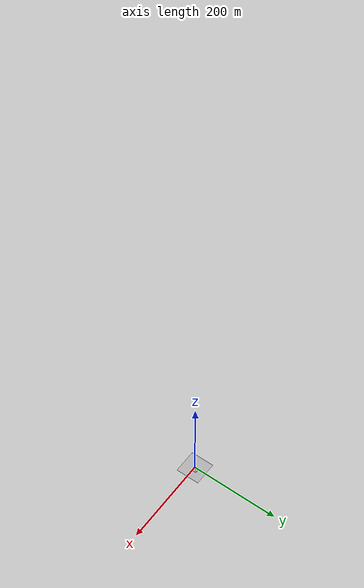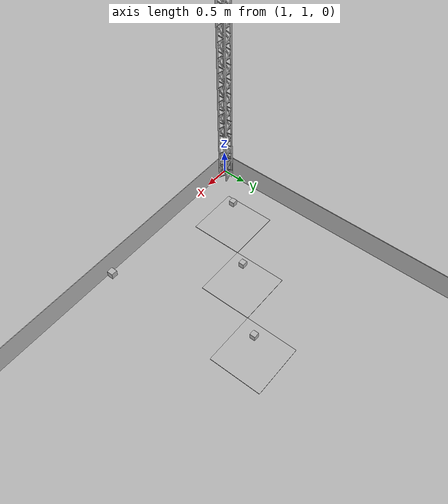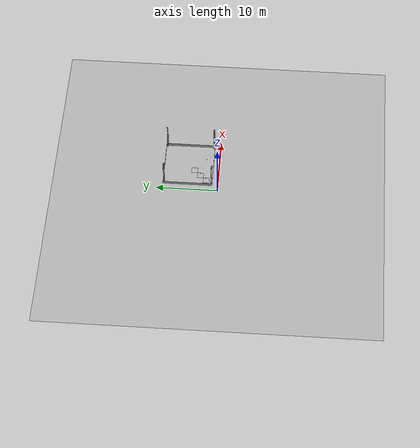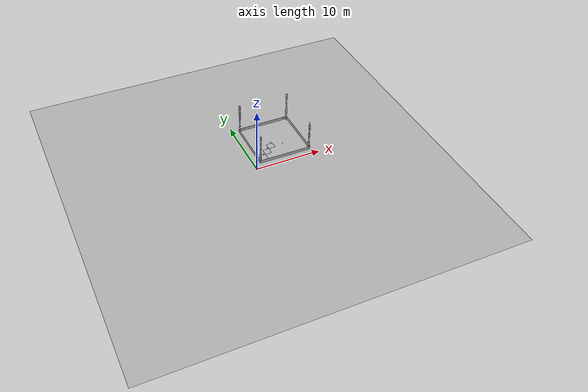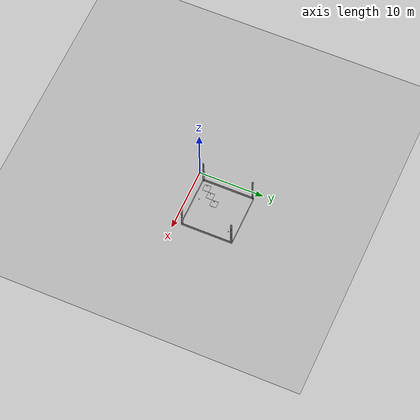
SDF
<sdf version="1.5">
 <world name="default">
  <plugin name="mrs_gazebo_static_transform_republisher_plugin" filename="libMRSGazeboStaticTransformRepublisher.so"/>
  <spherical_coordinates>
   <surface_model>EARTH_WGS84</surface_model>
   <latitude_deg>37.411802</latitude_deg>
   <longitude_deg>-121.995739</longitude_deg>
   <elevation>0.0</elevation>
   <heading_deg>0</heading_deg>
  </spherical_coordinates>
  <physics name="default_physics" default="0" type="ode">
   <gravity>0 0 -9.8066</gravity>
   <ode>
    <solver>
     <type>quick</type>
     <iters>10</iters>
     <sor>1.3</sor>
     <use_dynamic_moi_rescaling>0</use_dynamic_moi_rescaling>
    </solver>
    <constraints>
     <cfm>0</cfm>
     <erp>0.2</erp>
     <contact_max_correcting_vel>1000</contact_max_correcting_vel>
     <contact_surface_layer>0.001</contact_surface_layer>
    </constraints>
   </ode>
   <max_step_size>0.004</max_step_size>
   <real_time_factor>1</real_time_factor>
   <real_time_update_rate>250</real_time_update_rate>
   <magnetic_field>6.0e-06 2.3e-05 -4.2e-05</magnetic_field>
  </physics>
  <scene><shadows>false</shadows></scene>
  <light type="directional" name="sun">
   <pose>250 250 600 0 0 0</pose>
   <diffuse>0.8 0.8 0.8 1</diffuse>
   <specular>0.2 0.2 0.2 1</specular>
   <attenuation>
    <range>1000</range>
    <constant>0.9</constant>
    <linear>0.01</linear>
    <quadratic>0.001</quadratic>
   </attenuation>
   <direction>0 0 -1</direction>
  </light>
  <model name="ground_plane">
   <static>true</static>
   <link name="link">
    <collision name="collision">
     <geometry><plane><normal>0 0 1</normal><size>250 250</size></plane></geometry>
     <surface><friction><ode><mu>1</mu><mu2>1</mu2></ode></friction></surface>
    </collision>
    <visual name="grass">
     <cast_shadows>false</cast_shadows>
     <geometry><mesh><uri>file://grass_plane/meshes/grass_plane.dae</uri></mesh></geometry>
    </visual>
   </link>
  </model>
  <include><uri>model://arena_spawn</uri><pose>1 1 0.0005 0 -0 0</pose></include>
  <model name="land_base_1"><include><uri>model://land_base</uri><pose>2 2 0.012 0 -0 0</pose></include></model>
  <model name="land_base_2"><include><uri>model://land_base</uri><pose>3 3 0.012 0 -0 0</pose></include></model>
  <model name="land_base_3"><include><uri>model://land_base</uri><pose>4 4 0.012 0 -0 0</pose></include></model>
  <include><uri>model://equipmentA</uri><pose>4 4 0.6 0 -0 0</pose></include>
  <include><uri>model://equipmentB</uri><pose>3 3 0.6 0 -0 0</pose></include>
  <include><uri>model://equipmentC</uri><pose>2 2 0.6 0 -0 0</pose></include>
  <include><uri>model://equipmentD</uri><pose>5.0 2.08 1.67 0 -0 0</pose></include>
  <include><uri>model://equipmentE</uri><pose>8 8 1.17 0 -0 0</pose></include>
  <model name="the_void">
   <static>1</static>
   <link name="link">
    <pose>0 0 0.1 0 -0 0</pose>
    <visual name="the_void">
     <pose>0 0 2 0 -0 0</pose>
     <geometry><sphere><radius>0.25</radius></sphere></geometry>
     <material>
      <script><uri>file://media/materials/scripts/Gazebo.material</uri><name>Gazebo/Black</name></script>
     </material>
    </visual>
   </link>
   <pose>-1000 -1000 0 0 0 0</pose>
  </model>
  <plugin name="ros_link_attacher_plugin" filename="libgazebo_ros_link_attacher.so"/>
  <plugin name="mrs_gazebo_rviz_cam_synchronizer" filename="libMRSGazeboRvizCameraSynchronizer.so">
   <target_frame_id>gazebo_user_camera</target_frame_id>
   <world_origin_frame_id>uav1/gps_origin</world_origin_frame_id>
   <frame_to_follow>uav1::base_link</frame_to_follow>
  </plugin>
 </world>
</sdf>

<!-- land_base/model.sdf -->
<sdf version='1.6'>
  <model name='land_base'>
    <link name='link_E'>
      <inertial>
        <mass>1</mass>
        <inertia>
          <ixx>0.166667</ixx>
          <ixy>0</ixy>
          <ixz>0</ixz>
          <iyy>0.166667</iyy>
          <iyz>0</iyz>
          <izz>0.166667</izz>
        </inertia>
      </inertial>
      <pose frame=''>0 0 0 0 -0 0</pose>
      <visual name='visual'>
        <pose frame=''>0 0 0 0 -0 0</pose>
        <geometry>
          <mesh>
            <uri>model://land_base/meshes/land_base_1.obj</uri>
            <scale>1 1 1</scale>
          </mesh>
        </geometry>
        <transparency>0</transparency>
        <cast_shadows>1</cast_shadows>
      </visual>
      <collision name='collision'>
        <laser_retro>0</laser_retro>
        <max_contacts>100</max_contacts>
        <pose frame=''>0 0 0 0 -0 0</pose>
        <geometry>
          <mesh>
            <uri>model://land_base/meshes/land_base_1.obj</uri>
            <scale>1 1 1</scale>
          </mesh>
        </geometry>
        <surface>
          <friction>
            <ode>
              <mu>100</mu>
              <mu2>100</mu2>
              <fdir1>0 0 0</fdir1>
              <slip1>0</slip1>
              <slip2>0</slip2>
            </ode>
            <torsional>
              <coefficient>1</coefficient>
              <patch_radius>1</patch_radius>
              <surface_radius>1</surface_radius>
              <use_patch_radius>1</use_patch_radius>
              <ode>
                <slip>0</slip>
              </ode>
            </torsional>
          </friction>
          <bounce>
            <restitution_coefficient>1</restitution_coefficient>
            <threshold>1e+06</threshold>
          </bounce>
          <contact>
            <collide_without_contact>0</collide_without_contact>
            <collide_without_contact_bitmask>1</collide_without_contact_bitmask>
            <collide_bitmask>1</collide_bitmask>
            <ode>
              <soft_cfm>0</soft_cfm>
              <soft_erp>0.2</soft_erp>
              <kp>1e+13</kp>
              <kd>1</kd>
              <max_vel>0.01</max_vel>
              <min_depth>0</min_depth>
            </ode>
            <bullet>
              <split_impulse>1</split_impulse>
              <split_impulse_penetration_threshold>-0.01</split_impulse_penetration_threshold>
              <soft_cfm>0</soft_cfm>
              <soft_erp>0.2</soft_erp>
              <kp>1e+13</kp>
              <kd>1</kd>
            </bullet>
          </contact>
        </surface>
      </collision>
    </link>
    <static>1</static>
    <allow_auto_disable>1</allow_auto_disable>
  </model>
</sdf>

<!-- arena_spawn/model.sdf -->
<sdf version='1.6'>
  <model name='arena_spawn'>
    <link name='link_arena'>
      <inertial>
        <mass>15</mass>
        <inertia>
          <ixx>1</ixx>
          <ixy>1</ixy>
          <ixz>1</ixz>
          <iyy>1</iyy>
          <iyz>1</iyz>
          <izz>1</izz>
        </inertia>
      </inertial>
      <self_collide>1</self_collide>
      <enable_wind>0</enable_wind>
      <kinematic>0</kinematic>
      <pose frame=''>0 0 0 0 -0 0</pose>
      <visual name='visual'>
        <pose frame=''>0 0 0 0 -0 0</pose>
        <geometry>
          <mesh>
            <uri>model://arena_spawn/meshes/Arena.obj</uri>
            <scale>1 1 1</scale>
          </mesh>
        </geometry>
        <transparency>0</transparency>
        <cast_shadows>1</cast_shadows>
      </visual>
      <collision name='collision'>
        <laser_retro>0</laser_retro>
        <max_contacts>10</max_contacts>
        <pose frame=''>0 0 0 0 -0 0</pose>
        <geometry>
          <mesh>
            <uri>model://arena_spawn/meshes/Arena.obj</uri>
            <scale>1 1 1</scale>
          </mesh>
        </geometry>
        <surface>
          <friction>
            <ode>
              <mu>1</mu>
              <mu2>1</mu2>
              <fdir1>0 0 0</fdir1>
              <slip1>0</slip1>
              <slip2>0</slip2>
            </ode>
            <torsional>
              <coefficient>1</coefficient>
              <patch_radius>100</patch_radius>
              <surface_radius>100</surface_radius>
              <use_patch_radius>1</use_patch_radius>
              <ode>
                <slip>0</slip>
              </ode>
            </torsional>
          </friction>
          <bounce>
            <restitution_coefficient>0</restitution_coefficient>
            <threshold>1e+06</threshold>
          </bounce>
          <contact>
            <collide_without_contact>0</collide_without_contact>
            <collide_without_contact_bitmask>1</collide_without_contact_bitmask>
            <collide_bitmask>1</collide_bitmask>
            <ode>
              <soft_cfm>0</soft_cfm>
              <soft_erp>0.2</soft_erp>
              <kp>1e+13</kp>
              <kd>1</kd>
              <max_vel>0.01</max_vel>
              <min_depth>0</min_depth>
            </ode>
            <bullet>
              <split_impulse>1</split_impulse>
              <split_impulse_penetration_threshold>-0.01</split_impulse_penetration_threshold>
              <soft_cfm>0</soft_cfm>
              <soft_erp>0.2</soft_erp>
              <kp>1e+13</kp>
              <kd>1</kd>
            </bullet>
          </contact>
        </surface>
      </collision>
    </link>
    <link name='pilar_1'>
      <inertial>
        <mass>1</mass>
        <inertia>
          <ixx>0.166667</ixx>
          <ixy>0</ixy>
          <ixz>0</ixz>
          <iyy>0.166667</iyy>
          <iyz>0</iyz>
          <izz>0.166667</izz>
        </inertia>
      </inertial>
      <self_collide>1</self_collide>
      <enable_wind>0</enable_wind>
      <kinematic>0</kinematic>
      <pose frame=''>0 0 0 0 -0 0</pose>
      <visual name='visual'>
        <pose frame=''>0 0 0 0 -0 0</pose>
        <geometry>
          <mesh>
            <uri>model://arena_spawn/meshes/pilar.obj</uri>
            <scale>1 1 1</scale>
          </mesh>
        </geometry>
        <transparency>0</transparency>
        <cast_shadows>1</cast_shadows>
      </visual>
      <collision name='collision'>
        <laser_retro>0</laser_retro>
        <max_contacts>10</max_contacts>
        <pose frame=''>0 0 0 0 -0 0</pose>
        <geometry>
          <mesh>
            <uri>model://arena_spawn/meshes/pilar.obj</uri>
            <scale>1 1 1</scale>
          </mesh>
        </geometry>
        <surface>
          <friction>
            <ode>
              <mu>1</mu>
              <mu2>1</mu2>
              <fdir1>0 0 0</fdir1>
              <slip1>0</slip1>
              <slip2>0</slip2>
            </ode>
            <torsional>
              <coefficient>1</coefficient>
              <patch_radius>100</patch_radius>
              <surface_radius>100</surface_radius>
              <use_patch_radius>1</use_patch_radius>
              <ode>
                <slip>0</slip>
              </ode>
            </torsional>
          </friction>
          <bounce>
            <restitution_coefficient>0</restitution_coefficient>
            <threshold>1e+06</threshold>
          </bounce>
          <contact>
            <collide_without_contact>0</collide_without_contact>
            <collide_without_contact_bitmask>1</collide_without_contact_bitmask>
            <collide_bitmask>1</collide_bitmask>
            <ode>
              <soft_cfm>0</soft_cfm>
              <soft_erp>0.2</soft_erp>
              <kp>1e+13</kp>
              <kd>1</kd>
              <max_vel>0.01</max_vel>
              <min_depth>0</min_depth>
            </ode>
            <bullet>
              <split_impulse>1</split_impulse>
              <split_impulse_penetration_threshold>-0.01</split_impulse_penetration_threshold>
              <soft_cfm>0</soft_cfm>
              <soft_erp>0.2</soft_erp>
              <kp>1e+13</kp>
              <kd>1</kd>
            </bullet>
          </contact>
        </surface>
      </collision>
    </link>
    <link name='pilar_2'>
      <inertial>
        <mass>1</mass>
        <inertia>
          <ixx>0.166667</ixx>
          <ixy>0</ixy>
          <ixz>0</ixz>
          <iyy>0.166667</iyy>
          <iyz>0</iyz>
          <izz>0.166667</izz>
        </inertia>
      </inertial>
      <self_collide>1</self_collide>
      <enable_wind>0</enable_wind>
      <kinematic>0</kinematic>
      <pose frame=''>7.7 0 0 0 -0 0</pose>
      <visual name='visual'>
        <pose frame=''>0 0 0 0 -0 0</pose>
        <geometry>
          <mesh>
            <uri>model://arena_spawn/meshes/pilar.obj</uri>
            <scale>1 1 1</scale>
          </mesh>
        </geometry>
        <transparency>0</transparency>
        <cast_shadows>1</cast_shadows>
      </visual>
      <collision name='collision'>
        <laser_retro>0</laser_retro>
        <max_contacts>10</max_contacts>
        <pose frame=''>0 0 0 0 -0 0</pose>
        <geometry>
          <mesh>
            <uri>model://arena_spawn/meshes/pilar.obj</uri>
            <scale>1 1 1</scale>
          </mesh>
        </geometry>
        <surface>
          <friction>
            <ode>
              <mu>1</mu>
              <mu2>1</mu2>
              <fdir1>0 0 0</fdir1>
              <slip1>0</slip1>
              <slip2>0</slip2>
            </ode>
            <torsional>
              <coefficient>1</coefficient>
              <patch_radius>100</patch_radius>
              <surface_radius>100</surface_radius>
              <use_patch_radius>1</use_patch_radius>
              <ode>
                <slip>0</slip>
              </ode>
            </torsional>
          </friction>
          <bounce>
            <restitution_coefficient>0</restitution_coefficient>
            <threshold>1e+06</threshold>
          </bounce>
          <contact>
            <collide_without_contact>0</collide_without_contact>
            <collide_without_contact_bitmask>1</collide_without_contact_bitmask>
            <collide_bitmask>1</collide_bitmask>
            <ode>
              <soft_cfm>0</soft_cfm>
              <soft_erp>0.2</soft_erp>
              <kp>1e+13</kp>
              <kd>1</kd>
              <max_vel>0.01</max_vel>
              <min_depth>0</min_depth>
            </ode>
            <bullet>
              <split_impulse>1</split_impulse>
              <split_impulse_penetration_threshold>-0.01</split_impulse_penetration_threshold>
              <soft_cfm>0</soft_cfm>
              <soft_erp>0.2</soft_erp>
              <kp>1e+13</kp>
              <kd>1</kd>
            </bullet>
          </contact>
        </surface>
      </collision>
    </link>
    <link name='pilar_3'>
      <inertial>
        <mass>1</mass>
        <inertia>
          <ixx>0.166667</ixx>
          <ixy>0</ixy>
          <ixz>0</ixz>
          <iyy>0.166667</iyy>
          <iyz>0</iyz>
          <izz>0.166667</izz>
        </inertia>
      </inertial>
      <self_collide>1</self_collide>
      <enable_wind>0</enable_wind>
      <kinematic>0</kinematic>
      <pose frame=''>0 7.7 0 0 -0 0</pose>
      <visual name='visual'>
        <pose frame=''>0 0 0 0 -0 0</pose>
        <geometry>
          <mesh>
            <uri>model://arena_spawn/meshes/pilar.obj</uri>
            <scale>1 1 1</scale>
          </mesh>
        </geometry>
        <transparency>0</transparency>
        <cast_shadows>1</cast_shadows>
      </visual>
      <collision name='collision'>
        <laser_retro>0</laser_retro>
        <max_contacts>10</max_contacts>
        <pose frame=''>0 0 0 0 -0 0</pose>
        <geometry>
          <mesh>
            <uri>model://arena_spawn/meshes/pilar.obj</uri>
            <scale>1 1 1</scale>
          </mesh>
        </geometry>
        <surface>
          <friction>
            <ode>
              <mu>1</mu>
              <mu2>1</mu2>
              <fdir1>0 0 0</fdir1>
              <slip1>0</slip1>
              <slip2>0</slip2>
            </ode>
            <torsional>
              <coefficient>1</coefficient>
              <patch_radius>100</patch_radius>
              <surface_radius>100</surface_radius>
              <use_patch_radius>1</use_patch_radius>
              <ode>
                <slip>0</slip>
              </ode>
            </torsional>
          </friction>
          <bounce>
            <restitution_coefficient>0</restitution_coefficient>
            <threshold>1e+06</threshold>
          </bounce>
          <contact>
            <collide_without_contact>0</collide_without_contact>
            <collide_without_contact_bitmask>1</collide_without_contact_bitmask>
            <collide_bitmask>1</collide_bitmask>
            <ode>
              <soft_cfm>0</soft_cfm>
              <soft_erp>0.2</soft_erp>
              <kp>1e+13</kp>
              <kd>1</kd>
              <max_vel>0.01</max_vel>
              <min_depth>0</min_depth>
            </ode>
            <bullet>
              <split_impulse>1</split_impulse>
              <split_impulse_penetration_threshold>-0.01</split_impulse_penetration_threshold>
              <soft_cfm>0</soft_cfm>
              <soft_erp>0.2</soft_erp>
              <kp>1e+13</kp>
              <kd>1</kd>
            </bullet>
          </contact>
        </surface>
      </collision>
    </link>
    <link name='pilar_4'>
      <inertial>
        <mass>1</mass>
        <inertia>
          <ixx>0.166667</ixx>
          <ixy>0</ixy>
          <ixz>0</ixz>
          <iyy>0.166667</iyy>
          <iyz>0</iyz>
          <izz>0.166667</izz>
        </inertia>
      </inertial>
      <self_collide>1</self_collide>
      <enable_wind>0</enable_wind>
      <kinematic>0</kinematic>
      <pose frame=''>7.7 7.7 0 0 -0 0</pose>
      <visual name='visual'>
        <pose frame=''>0 0 0 0 -0 0</pose>
        <geometry>
          <mesh>
            <uri>model://arena_spawn/meshes/pilar.obj</uri>
            <scale>1 1 1</scale>
          </mesh>
        </geometry>
        <transparency>0</transparency>
        <cast_shadows>1</cast_shadows>
      </visual>
      <collision name='collision'>
        <laser_retro>0</laser_retro>
        <max_contacts>10</max_contacts>
        <pose frame=''>0 0 0 0 -0 0</pose>
        <geometry>
          <mesh>
            <uri>model://arena_spawn/meshes/pilar.obj</uri>
            <scale>1 1 1</scale>
          </mesh>
        </geometry>
        <surface>
          <friction>
            <ode>
              <mu>1</mu>
              <mu2>1</mu2>
              <fdir1>0 0 0</fdir1>
              <slip1>0</slip1>
              <slip2>0</slip2>
            </ode>
            <torsional>
              <coefficient>1</coefficient>
              <patch_radius>100</patch_radius>
              <surface_radius>100</surface_radius>
              <use_patch_radius>1</use_patch_radius>
              <ode>
                <slip>0</slip>
              </ode>
            </torsional>
          </friction>
          <bounce>
            <restitution_coefficient>0</restitution_coefficient>
            <threshold>1e+06</threshold>
          </bounce>
          <contact>
            <collide_without_contact>0</collide_without_contact>
            <collide_without_contact_bitmask>1</collide_without_contact_bitmask>
            <collide_bitmask>1</collide_bitmask>
            <ode>
              <soft_cfm>0</soft_cfm>
              <soft_erp>0.2</soft_erp>
              <kp>1e+13</kp>
              <kd>1</kd>
              <max_vel>0.01</max_vel>
              <min_depth>0</min_depth>
            </ode>
            <bullet>
              <split_impulse>1</split_impulse>
              <split_impulse_penetration_threshold>-0.01</split_impulse_penetration_threshold>
              <soft_cfm>0</soft_cfm>
              <soft_erp>0.2</soft_erp>
              <kp>1e+13</kp>
              <kd>1</kd>
            </bullet>
          </contact>
        </surface>
      </collision>
    </link>
    <static>1</static>
    <pose frame=''>0 0 0.0005 0 -0 0</pose>
  </model>
</sdf>

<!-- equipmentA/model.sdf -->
<sdf version='1.6'>
  <model name='equipmentA'>
    <link name='link_A'>
      <inertial>
        <mass>0.1</mass>
        <inertia>
          <ixx>0.17</ixx>
          <ixy>0.00</ixy>
          <ixz>0.00</ixz>
          <iyy>0.17</iyy>
          <iyz>0.00</iyz>
          <izz>0.17</izz>
        </inertia>
      </inertial>
      <pose frame=''>0 0 0 0 -0 0</pose>
      <visual name='visual'>
        <pose frame=''>0 0 0 0 -0 0</pose>
        <geometry>
          <mesh>
            <uri>model://equipmentA/meshes/equipment_A.obj</uri>
            <scale>1 1 1</scale>
          </mesh>
        </geometry>
        <transparency>0</transparency>
        <cast_shadows>1</cast_shadows>
      </visual>
      <collision name='collision'>
        <laser_retro>0</laser_retro>
        <max_contacts>10</max_contacts>
        <pose frame=''>0 0 0.05 0 -0 0</pose>
        <geometry>
          <box>
            <size>0.1 0.1 0.1</size>
          </box>
        </geometry>
        <surface>
          <friction>
            <ode>
              <mu>1</mu>
              <mu2>1</mu2>
              <fdir1>0 0 0</fdir1>
              <slip1>0</slip1>
              <slip2>0</slip2>
            </ode>
            <torsional>
              <coefficient>1</coefficient>
              <patch_radius>1</patch_radius>
              <surface_radius>1</surface_radius>
              <use_patch_radius>1</use_patch_radius>
              <ode>
                <slip>0</slip>
              </ode>
            </torsional>
          </friction>
          <bounce>
            <restitution_coefficient>1</restitution_coefficient>
            <threshold>1e+06</threshold>
          </bounce>
          <contact>
            <collide_without_contact>0</collide_without_contact>
            <collide_without_contact_bitmask>1</collide_without_contact_bitmask>
            <collide_bitmask>1</collide_bitmask>
            <ode>
              <soft_cfm>0</soft_cfm>
              <soft_erp>0.2</soft_erp>
              <kp>1e+13</kp>
              <kd>1</kd>
              <max_vel>0.01</max_vel>
              <min_depth>0</min_depth>
            </ode>
            <bullet>
              <split_impulse>1</split_impulse>
              <split_impulse_penetration_threshold>-0.01</split_impulse_penetration_threshold>
              <soft_cfm>0</soft_cfm>
              <soft_erp>0.2</soft_erp>
              <kp>1e+13</kp>
              <kd>1</kd>
            </bullet>
          </contact>
        </surface>
      </collision>
    </link>
    <static>0</static>
    <allow_auto_disable>1</allow_auto_disable>
  </model>
</sdf>

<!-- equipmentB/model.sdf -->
<sdf version='1.6'>
  <model name='equipmentB'>
    <link name='link_B'>
      <inertial>
        <mass>0.1</mass>
        <inertia>
          <ixx>0.17</ixx>
          <ixy>0.00</ixy>
          <ixz>0.00</ixz>
          <iyy>0.17</iyy>
          <iyz>0.00</iyz>
          <izz>0.17</izz>
        </inertia>
      </inertial>
      <pose frame=''>0 0 0 0 -0 0</pose>
      <visual name='visual'>
        <pose frame=''>0 0 0 0 -0 0</pose>
        <geometry>
          <mesh>
            <uri>model://equipmentB/meshes/equipment_B.obj</uri>
            <scale>1 1 1</scale>
          </mesh>
        </geometry>
        <transparency>0</transparency>
        <cast_shadows>1</cast_shadows>
      </visual>
      <collision name='collision'>
        <laser_retro>0</laser_retro>
        <max_contacts>10</max_contacts>
        <pose frame=''>0 0 0.05 0 -0 0</pose>
        <geometry>
          <box>
            <size>0.1 0.1 0.1</size>
          </box>
        </geometry>
        <surface>
          <friction>
            <ode>
              <mu>1</mu>
              <mu2>1</mu2>
              <fdir1>0 0 0</fdir1>
              <slip1>0</slip1>
              <slip2>0</slip2>
            </ode>
            <torsional>
              <coefficient>1</coefficient>
              <patch_radius>1</patch_radius>
              <surface_radius>1</surface_radius>
              <use_patch_radius>1</use_patch_radius>
              <ode>
                <slip>0</slip>
              </ode>
            </torsional>
          </friction>
          <bounce>
            <restitution_coefficient>1</restitution_coefficient>
            <threshold>1e+06</threshold>
          </bounce>
          <contact>
            <collide_without_contact>0</collide_without_contact>
            <collide_without_contact_bitmask>1</collide_without_contact_bitmask>
            <collide_bitmask>1</collide_bitmask>
            <ode>
              <soft_cfm>0</soft_cfm>
              <soft_erp>0.2</soft_erp>
              <kp>1e+13</kp>
              <kd>1</kd>
              <max_vel>0.01</max_vel>
              <min_depth>0</min_depth>
            </ode>
            <bullet>
              <split_impulse>1</split_impulse>
              <split_impulse_penetration_threshold>-0.01</split_impulse_penetration_threshold>
              <soft_cfm>0</soft_cfm>
              <soft_erp>0.2</soft_erp>
              <kp>1e+13</kp>
              <kd>1</kd>
            </bullet>
          </contact>
        </surface>
      </collision>
    </link>
    <static>0</static>
    <allow_auto_disable>1</allow_auto_disable>
  </model>
</sdf>

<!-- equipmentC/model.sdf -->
<sdf version='1.6'>
  <model name='equipmentC'>
    <link name='link_C'>
      <inertial>
        <mass>0.1</mass>
        <inertia>
          <ixx>0.17</ixx>
          <ixy>0.00</ixy>
          <ixz>0.00</ixz>
          <iyy>0.17</iyy>
          <iyz>0.00</iyz>
          <izz>0.17</izz>
        </inertia>
      </inertial>
      <pose frame=''>0 0 0 0 -0 0</pose>
      <visual name='visual'>
        <pose frame=''>0 0 0 0 -0 0</pose>
        <geometry>
          <mesh>
            <uri>model://equipmentC/meshes/equipment_C.obj</uri>
            <scale>1 1 1</scale>
          </mesh>
        </geometry>
        <transparency>0</transparency>
        <cast_shadows>1</cast_shadows>
      </visual>
      <collision name='collision'>
        <laser_retro>0</laser_retro>
        <max_contacts>10</max_contacts>
        <pose frame=''>0 0 0.05 0 -0 0</pose>
        <geometry>
          <box>
            <size>0.1 0.1 0.1</size>
          </box>
        </geometry>
        <surface>
          <friction>
            <ode>
              <mu>1</mu>
              <mu2>1</mu2>
              <fdir1>0 0 0</fdir1>
              <slip1>0</slip1>
              <slip2>0</slip2>
            </ode>
            <torsional>
              <coefficient>1</coefficient>
              <patch_radius>1</patch_radius>
              <surface_radius>1</surface_radius>
              <use_patch_radius>1</use_patch_radius>
              <ode>
                <slip>0</slip>
              </ode>
            </torsional>
          </friction>
          <bounce>
            <restitution_coefficient>1</restitution_coefficient>
            <threshold>1e+06</threshold>
          </bounce>
          <contact>
            <collide_without_contact>0</collide_without_contact>
            <collide_without_contact_bitmask>1</collide_without_contact_bitmask>
            <collide_bitmask>1</collide_bitmask>
            <ode>
              <soft_cfm>0</soft_cfm>
              <soft_erp>0.2</soft_erp>
              <kp>1e+13</kp>
              <kd>1</kd>
              <max_vel>0.01</max_vel>
              <min_depth>0</min_depth>
            </ode>
            <bullet>
              <split_impulse>1</split_impulse>
              <split_impulse_penetration_threshold>-0.01</split_impulse_penetration_threshold>
              <soft_cfm>0</soft_cfm>
              <soft_erp>0.2</soft_erp>
              <kp>1e+13</kp>
              <kd>1</kd>
            </bullet>
          </contact>
        </surface>
      </collision>
    </link>
    <static>0</static>
    <allow_auto_disable>1</allow_auto_disable>
  </model>
</sdf>

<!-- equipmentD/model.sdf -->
<sdf version='1.6'>
  <model name='equipmentD'>
    <link name='link_D'>
      <inertial>
        <mass>0.1</mass>
        <inertia>
          <ixx>0.17</ixx>
          <ixy>0.00</ixy>
          <ixz>0.00</ixz>
          <iyy>0.17</iyy>
          <iyz>0.00</iyz>
          <izz>0.17</izz>
        </inertia>
      </inertial>
      <pose frame=''>0 0 0 0 -0 0</pose>
      <visual name='visual'>
        <pose frame=''>0 0 0 0 -0 0</pose>
        <geometry>
          <mesh>
            <uri>model://equipmentD/meshes/equipment_D.obj</uri>
            <scale>1 1 1</scale>
          </mesh>
        </geometry>
        <transparency>0</transparency>
        <cast_shadows>1</cast_shadows>
      </visual>
      <collision name='collision'>
        <laser_retro>0</laser_retro>
        <max_contacts>10</max_contacts>
        <pose frame=''>0 0 0.05 0 -0 0</pose>
        <geometry>
          <box>
            <size>0.1 0.1 0.1</size>
          </box>
        </geometry>
        <surface>
          <friction>
            <ode>
              <mu>1</mu>
              <mu2>1</mu2>
              <fdir1>0 0 0</fdir1>
              <slip1>0</slip1>
              <slip2>0</slip2>
            </ode>
            <torsional>
              <coefficient>1</coefficient>
              <patch_radius>1</patch_radius>
              <surface_radius>1</surface_radius>
              <use_patch_radius>1</use_patch_radius>
              <ode>
                <slip>0</slip>
              </ode>
            </torsional>
          </friction>
          <bounce>
            <restitution_coefficient>1</restitution_coefficient>
            <threshold>1e+06</threshold>
          </bounce>
          <contact>
            <collide_without_contact>0</collide_without_contact>
            <collide_without_contact_bitmask>1</collide_without_contact_bitmask>
            <collide_bitmask>1</collide_bitmask>
            <ode>
              <soft_cfm>0</soft_cfm>
              <soft_erp>0.2</soft_erp>
              <kp>1e+13</kp>
              <kd>1</kd>
              <max_vel>0.01</max_vel>
              <min_depth>0</min_depth>
            </ode>
            <bullet>
              <split_impulse>1</split_impulse>
              <split_impulse_penetration_threshold>-0.01</split_impulse_penetration_threshold>
              <soft_cfm>0</soft_cfm>
              <soft_erp>0.2</soft_erp>
              <kp>1e+13</kp>
              <kd>1</kd>
            </bullet>
          </contact>
        </surface>
      </collision>
    </link>
    <static>0</static>
    <allow_auto_disable>1</allow_auto_disable>
  </model>
</sdf>

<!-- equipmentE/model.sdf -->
<sdf version='1.6'>
  <model name='equipmentE'>
    <link name='link_E'>
      <inertial>
        <mass>0.1</mass>
        <inertia>
          <ixx>0.17</ixx>
          <ixy>0.00</ixy>
          <ixz>0.00</ixz>
          <iyy>0.17</iyy>
          <iyz>0.00</iyz>
          <izz>0.17</izz>
        </inertia>
      </inertial>
      <pose frame=''>0 0 0 0 -0 0</pose>
      <visual name='visual'>
        <pose frame=''>0 0 0 0 -0 0</pose>
        <geometry>
          <mesh>
            <uri>model://equipmentE/meshes/equipment_E.obj</uri>
            <scale>1 1 1</scale>
          </mesh>
        </geometry>
        <transparency>0</transparency>
        <cast_shadows>1</cast_shadows>
      </visual>
      <collision name='collision'>
        <laser_retro>0</laser_retro>
        <max_contacts>10</max_contacts>
        <pose frame=''>0 0 0.05 0 -0 0</pose>
        <geometry>
          <box>
            <size>0.1 0.1 0.1</size>
          </box>
        </geometry>
        <surface>
          <friction>
            <ode>
              <mu>1</mu>
              <mu2>1</mu2>
              <fdir1>0 0 0</fdir1>
              <slip1>0</slip1>
              <slip2>0</slip2>
            </ode>
            <torsional>
              <coefficient>1</coefficient>
              <patch_radius>1</patch_radius>
              <surface_radius>1</surface_radius>
              <use_patch_radius>1</use_patch_radius>
              <ode>
                <slip>0</slip>
              </ode>
            </torsional>
          </friction>
          <bounce>
            <restitution_coefficient>1</restitution_coefficient>
            <threshold>1e+06</threshold>
          </bounce>
          <contact>
            <collide_without_contact>0</collide_without_contact>
            <collide_without_contact_bitmask>1</collide_without_contact_bitmask>
            <collide_bitmask>1</collide_bitmask>
            <ode>
              <soft_cfm>0</soft_cfm>
              <soft_erp>0.2</soft_erp>
              <kp>1e+13</kp>
              <kd>1</kd>
              <max_vel>0.01</max_vel>
              <min_depth>0</min_depth>
            </ode>
            <bullet>
              <split_impulse>1</split_impulse>
              <split_impulse_penetration_threshold>-0.01</split_impulse_penetration_threshold>
              <soft_cfm>0</soft_cfm>
              <soft_erp>0.2</soft_erp>
              <kp>1e+13</kp>
              <kd>1</kd>
            </bullet>
          </contact>
        </surface>
      </collision>
    </link>
    <static>0</static>
    <allow_auto_disable>1</allow_auto_disable>
  </model>
</sdf>
